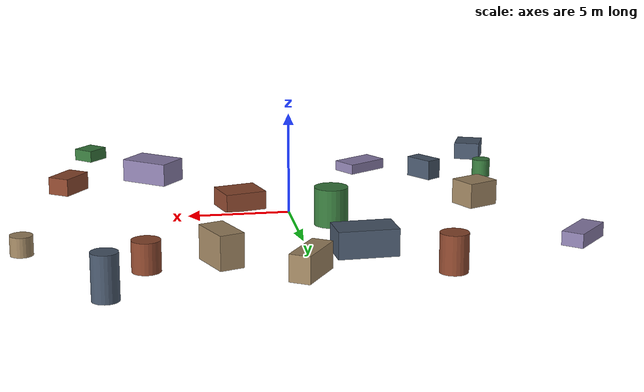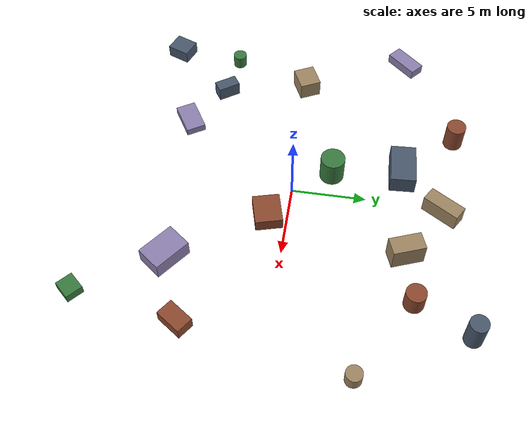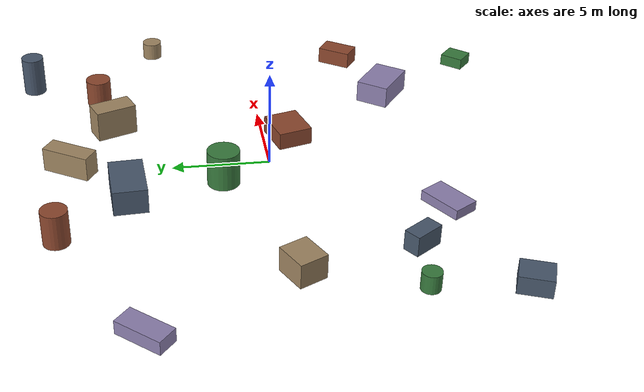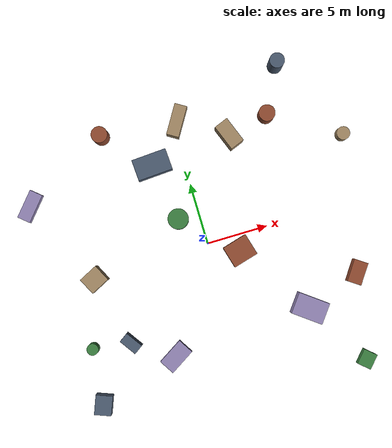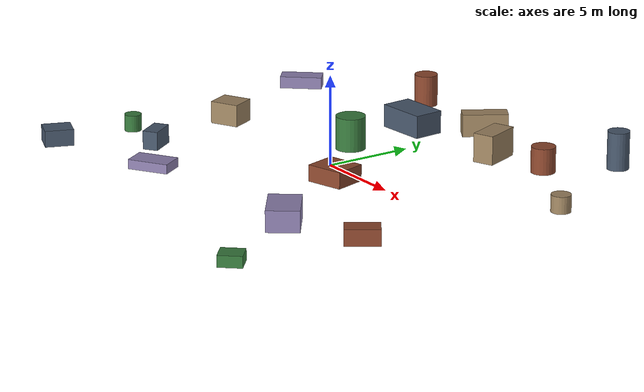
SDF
<sdf version="1.10">
 <world name="robotx_task1_uav_view">
  <gravity>0 0 -9.81</gravity>
  <physics name="physics" type="ode">
   <max_step_size>0.002</max_step_size>
   <real_time_factor>1.0</real_time_factor>
  </physics>
  <scene>
   <ambient>0.14 0.14 0.14 1.0</ambient>
   <background>0.32 0.32 0.38 1.0</background>
   <shadows>true</shadows>
   <grid>false</grid>
  </scene>
  <light name="sun" type="directional">
   <pose>0 0 300 0 0 0</pose>
   <diffuse>0.35 0.35 0.35 1.0</diffuse>
   <specular>0.12 0.12 0.12 1.0</specular>
   <direction>0.12 -0.05 -1.0</direction>
   <attenuation>
    <range>2500</range>
    <constant>0.85</constant>
    <linear>0.001</linear>
    <quadratic>0.00005</quadratic>
   </attenuation>
  </light>
  <plugin filename="gz-sim-physics-system" name="gz::sim::systems::Physics"/>
  <plugin filename="gz-sim-user-commands-system" name="gz::sim::systems::UserCommands"/>
  <plugin filename="gz-sim-scene-broadcaster-system" name="gz::sim::systems::SceneBroadcaster"/>
  <plugin filename="gz-sim-sensors-system" name="gz::sim::systems::Sensors">
   <render_engine>ogre2</render_engine>
  </plugin>
  <model name="scene_clutter_box_000">
   <static>true</static>
   <pose>4.073 7.851 0.827 0 0 -1.203793</pose>
   <link name="link">
    <visual name="v">
     <geometry><box><size>2.160 1.182 1.614</size></box></geometry>
     <material><ambient>0.45 0.38 0.32 1.0</ambient><diffuse>0.62 0.52 0.38 1.0</diffuse></material>
    </visual>
   </link>
  </model>
  <model name="scene_clutter_box_001">
   <static>true</static>
   <pose>-2.484 7.275 0.666 0 0 -3.084556</pose>
   <link name="link">
    <visual name="v">
     <geometry><box><size>2.844 1.713 1.291</size></box></geometry>
     <material><ambient>0.18 0.22 0.28 1.0</ambient><diffuse>0.28 0.34 0.42 1.0</diffuse></material>
    </visual>
   </link>
  </model>
  <model name="scene_clutter_cyl_002">
   <static>true</static>
   <pose>7.424 8.590 0.769 0 0 -1.209729</pose>
   <link name="link">
    <visual name="v">
     <geometry><cylinder><radius>0.663</radius><length>1.438</length></cylinder></geometry>
     <material><ambient>0.35 0.16 0.12 1.0</ambient><diffuse>0.55 0.28 0.18 1.0</diffuse></material>
    </visual>
   </link>
  </model>
  <model name="scene_clutter_cyl_003">
   <static>true</static>
   <pose>-11.253 -5.506 0.515 0 0 -2.517812</pose>
   <link name="link">
    <visual name="v">
     <geometry><cylinder><radius>0.473</radius><length>0.931</length></cylinder></geometry>
     <material><ambient>0.12 0.30 0.14 1.0</ambient><diffuse>0.22 0.48 0.24 1.0</diffuse></material>
    </visual>
   </link>
  </model>
  <model name="scene_clutter_box_004">
   <static>true</static>
   <pose>-5.038 -8.028 0.283 0 0 -2.589260</pose>
   <link name="link">
    <visual name="v">
     <geometry><box><size>2.299 1.355 0.526</size></box></geometry>
     <material><ambient>0.40 0.35 0.50 1.0</ambient><diffuse>0.55 0.50 0.68 1.0</diffuse></material>
    </visual>
   </link>
  </model>
  <model name="scene_clutter_box_005">
   <static>true</static>
   <pose>-9.507 -0.185 0.646 0 0 0.459074</pose>
   <link name="link">
    <visual name="v">
     <geometry><box><size>1.656 1.465 1.253</size></box></geometry>
     <material><ambient>0.45 0.38 0.32 1.0</ambient><diffuse>0.62 0.52 0.38 1.0</diffuse></material>
    </visual>
   </link>
  </model>
  <model name="scene_clutter_cyl_006">
   <static>true</static>
   <pose>9.256 12.222 1.100 0 0 -1.368270</pose>
   <link name="link">
    <visual name="v">
     <geometry><cylinder><radius>0.600</radius><length>2.099</length></cylinder></geometry>
     <material><ambient>0.18 0.22 0.28 1.0</ambient><diffuse>0.28 0.34 0.42 1.0</diffuse></material>
    </visual>
   </link>
  </model>
  <model name="scene_clutter_cyl_007">
   <static>true</static>
   <pose>-5.791 10.668 0.950 0 0 0.441824</pose>
   <link name="link">
    <visual name="v">
     <geometry><cylinder><radius>0.652</radius><length>1.800</length></cylinder></geometry>
     <material><ambient>0.35 0.16 0.12 1.0</ambient><diffuse>0.55 0.28 0.18 1.0</diffuse></material>
    </visual>
   </link>
  </model>
  <model name="scene_clutter_box_008">
   <static>true</static>
   <pose>9.645 -12.578 0.334 0 0 -2.301413</pose>
   <link name="link">
    <visual name="v">
     <geometry><box><size>1.286 1.160 0.627</size></box></geometry>
     <material><ambient>0.12 0.30 0.14 1.0</ambient><diffuse>0.22 0.48 0.24 1.0</diffuse></material>
    </visual>
   </link>
  </model>
  <model name="scene_clutter_box_009">
   <static>true</static>
   <pose>-12.857 6.921 0.362 0 0 -2.289230</pose>
   <link name="link">
    <visual name="v">
     <geometry><box><size>2.405 1.072 0.684</size></box></geometry>
     <material><ambient>0.40 0.35 0.50 1.0</ambient><diffuse>0.55 0.50 0.68 1.0</diffuse></material>
    </visual>
   </link>
  </model>
  <model name="scene_clutter_box_010">
   <static>true</static>
   <pose>0.396 10.102 0.650 0 0 1.017091</pose>
   <link name="link">
    <visual name="v">
     <geometry><box><size>2.545 1.005 1.260</size></box></geometry>
     <material><ambient>0.45 0.38 0.32 1.0</ambient><diffuse>0.62 0.52 0.38 1.0</diffuse></material>
    </visual>
   </link>
  </model>
  <model name="scene_clutter_box_011">
   <static>true</static>
   <pose>-11.702 -10.045 0.481 0 0 -1.940350</pose>
   <link name="link">
    <visual name="v">
     <geometry><box><size>1.592 1.366 0.921</size></box></geometry>
     <material><ambient>0.18 0.22 0.28 1.0</ambient><diffuse>0.28 0.34 0.42 1.0</diffuse></material>
    </visual>
   </link>
  </model>
  <model name="scene_clutter_box_012">
   <static>true</static>
   <pose>10.841 -5.619 0.466 0 0 -2.177532</pose>
   <link name="link">
    <visual name="v">
     <geometry><box><size>1.858 1.160 0.893</size></box></geometry>
     <material><ambient>0.35 0.16 0.12 1.0</ambient><diffuse>0.55 0.28 0.18 1.0</diffuse></material>
    </visual>
   </link>
  </model>
  <model name="scene_clutter_cyl_013">
   <static>true</static>
   <pose>-1.707 2.528 0.977 0 0 0.384360</pose>
   <link name="link">
    <visual name="v">
     <geometry><cylinder><radius>0.823</radius><length>1.854</length></cylinder></geometry>
     <material><ambient>0.12 0.30 0.14 1.0</ambient><diffuse>0.22 0.48 0.24 1.0</diffuse></material>
    </visual>
   </link>
  </model>
  <model name="scene_clutter_box_014">
   <static>true</static>
   <pose>6.369 -7.292 0.606 0 0 -2.218334</pose>
   <link name="link">
    <visual name="v">
     <geometry><box><size>1.770 2.600 1.172</size></box></geometry>
     <material><ambient>0.40 0.35 0.50 1.0</ambient><diffuse>0.55 0.50 0.68 1.0</diffuse></material>
    </visual>
   </link>
  </model>
  <model name="scene_clutter_cyl_015">
   <static>true</static>
   <pose>12.880 5.372 0.516 0 0 -2.458019</pose>
   <link name="link">
    <visual name="v">
     <geometry><cylinder><radius>0.535</radius><length>0.932</length></cylinder></geometry>
     <material><ambient>0.45 0.38 0.32 1.0</ambient><diffuse>0.62 0.52 0.38 1.0</diffuse></material>
    </visual>
   </link>
  </model>
  <model name="scene_clutter_box_016">
   <static>true</static>
   <pose>-8.170 -5.920 0.539 0 0 2.171202</pose>
   <link name="link">
    <visual name="v">
     <geometry><box><size>1.562 0.855 1.039</size></box></geometry>
     <material><ambient>0.18 0.22 0.28 1.0</ambient><diffuse>0.28 0.34 0.42 1.0</diffuse></material>
    </visual>
   </link>
  </model>
  <model name="scene_clutter_box_017">
   <static>true</static>
   <pose>2.304 -1.309 0.478 0 0 0.267332</pose>
   <link name="link">
    <visual name="v">
     <geometry><box><size>2.092 1.815 0.917</size></box></geometry>
     <material><ambient>0.35 0.16 0.12 1.0</ambient><diffuse>0.55 0.28 0.18 1.0</diffuse></material>
    </visual>
   </link>
  </model>
  <model name="uav_dataset_camera">
   <static>false</static>
   <pose>0 0 26 0 0 0</pose>
   <plugin filename="librobotx_overhead_motion_plugin.dylib" name="robotx::OverheadMotionPlugin">
    <radius_x_m>10.84208</radius_x_m>
    <radius_y_m>7.52400</radius_y_m>
    <angular_speed_rad_s>0.051908</angular_speed_rad_s>
    <phase_rad>2.346222</phase_rad>
    <z_wobble_m>0.02051</z_wobble_m>
    <z_wobble_hz>0.07292</z_wobble_hz>
    <z_wobble_phase_rad>0.929982</z_wobble_phase_rad>
   </plugin>
   <link name="camera_link">
    <gravity>false</gravity>
    <sensor name="top_down_rgb" type="camera">
     <always_on>true</always_on>
     <update_rate>20</update_rate>
     <pose>0 0 0 0 1.57079632679 0</pose>
     <camera>
      <horizontal_fov>1.05</horizontal_fov>
      <image><width>1920</width><height>1080</height><format>R8G8B8</format></image>
      <clip><near>0.2</near><far>600</far></clip>
     </camera>
     <topic>/robotx/uav/camera/image_raw</topic>
     <visualize>true</visualize>
    </sensor>
   </link>
  </model>
 </world>
</sdf>
